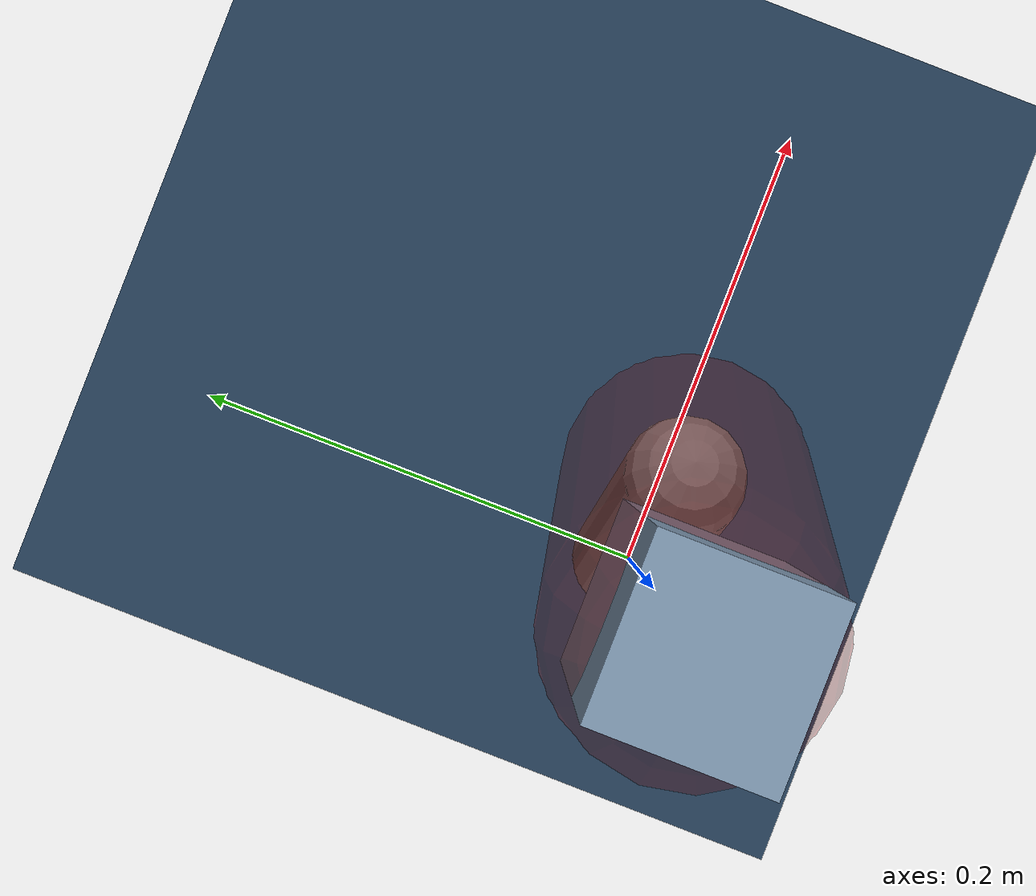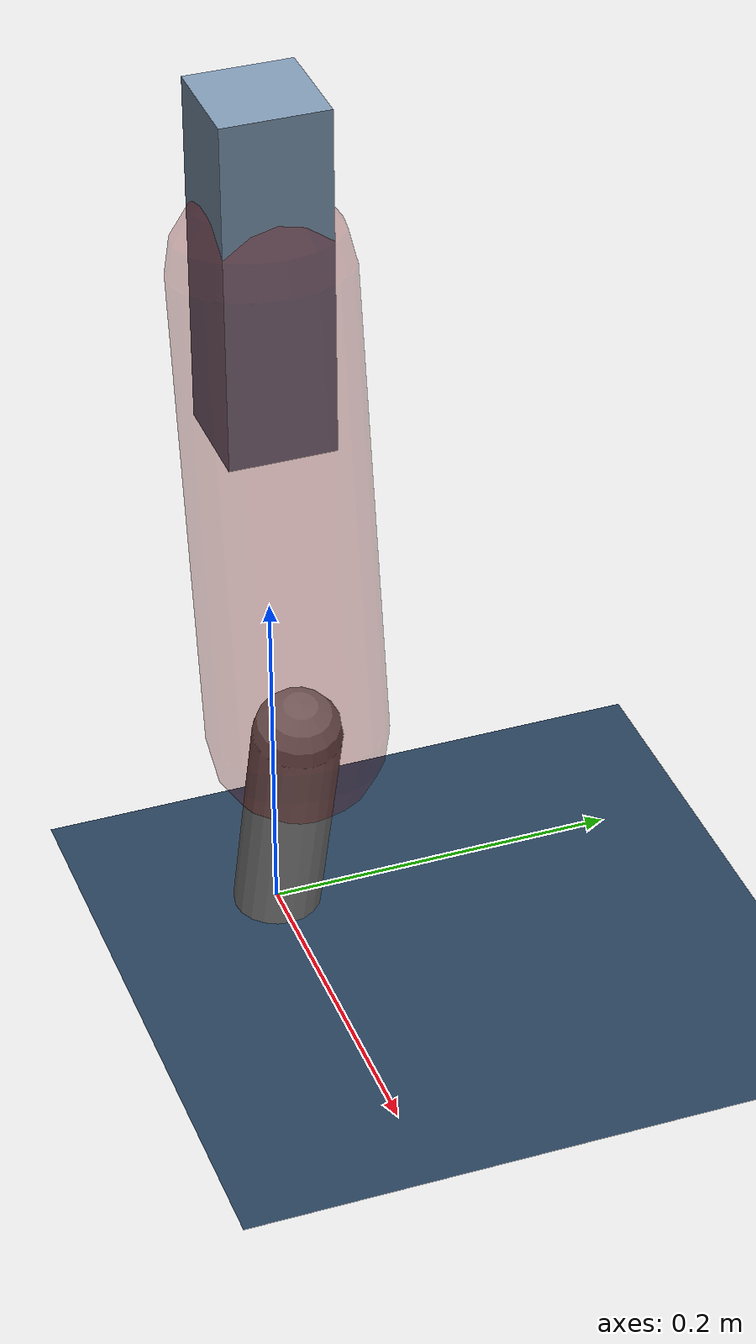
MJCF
<mujoco model="Hopper2D">
	<compiler inertiafromgeom="true" angle="radian" />
	<option timestep="0.001" integrator="implicit" cone="elliptic" solver="Newton" tolerance="1e-10" />

	<default>
		<geom contype="1" conaffinity="1" condim="3" friction="2 0.005 0.0001" solref="0.005 1" />
		<joint limited="true" damping="0.1" />
	</default>

	<asset>
		<texture name="skybox" type="skybox" builtin="gradient" rgb1=".4 .6 .8" rgb2="0 0 0" width="800" height="800" />
		<texture name="grid" type="2d" builtin="checker" rgb1=".1 .2 .3" rgb2=".2 .3 .4" width="300" height="300" mark="edge" markrgb=".2 .3 .4" />
		<material name="ground" texture="grid" texrepeat="1 1" texuniform="true" reflectance="0.1" />
		<material name="leg" rgba="0.5 0.6 0.7 1" />
	</asset>

	<worldbody>

		<geom name="floor" type="plane" size="5 5 0.25" material="ground" />

		<light directional="false" diffuse="0.8 0.8 0.8" specular="0.3 0.3 0.3" pos="0 0 2" dir="0 0 -1" />
		<light mode="targetbodycom" target="base" directional="false" diffuse="0.8 0.8 0.8" specular="0.3 0.3 0.3" pos="0 0 2" dir="0 0 -1" />

		<camera name="fixed" pos="0 -2 1" xyaxes="1 0 0 0 0 1" />
		<camera name="tracking" mode="trackcom" pos="0 -3 1" />

		<body name="root" pos="0 0 0.4117064660933415">
			<joint name="slide_x" type="slide" axis="1 0 0" range="-100 100" />
			<joint name="slide_z" type="slide" axis="0 0 1" range="0 10" />

			<body name="base" pos="0 0 0">
				<geom name="torso" type="box" size="0.03 0.03 0.1" mass="1.401" material="leg" />

				<body name="link1" pos="0 0 0" euler="0 1.4079540930362888 0">
					<joint type="hinge" axis="0 -1 0" pos="0 0 0" name="hinge1" limited="true" range="-3.14 3.14" stiffness="0" damping="0.1" />
					<geom name="thigh" type="capsule" fromto="0 0 0 0.2697708892883488 0 0" size="0.05" rgba="0.5 0 0 0.3" mass="0.9080814010785417" />

					<body name="link2" pos="0.2697708892883488 0 0" euler="0 0.4548338919957476 0">
						<joint type="hinge" axis="0 -1 0" pos="0 0 0" name="hinge2" limited="true" range="-3.14 3.14" stiffness="0" damping="0.1" />
						<geom name="shank" type="capsule" fromto="0 0 0 0.15193557680499273 0 0" size="0.025" mass="0.3594420191244934" />

					</body>
				</body>
			</body>
		</body>
	</worldbody>

	<actuator>
		<motor name="torque1" joint="hinge1" ctrlrange="-14.913314813398864 14.913314813398864" ctrllimited="true" gear="1" />
		<motor name="torque2" joint="hinge2" ctrlrange="-38.50686022097116 38.50686022097116" ctrllimited="true" gear="1" />
	</actuator>
</mujoco>
